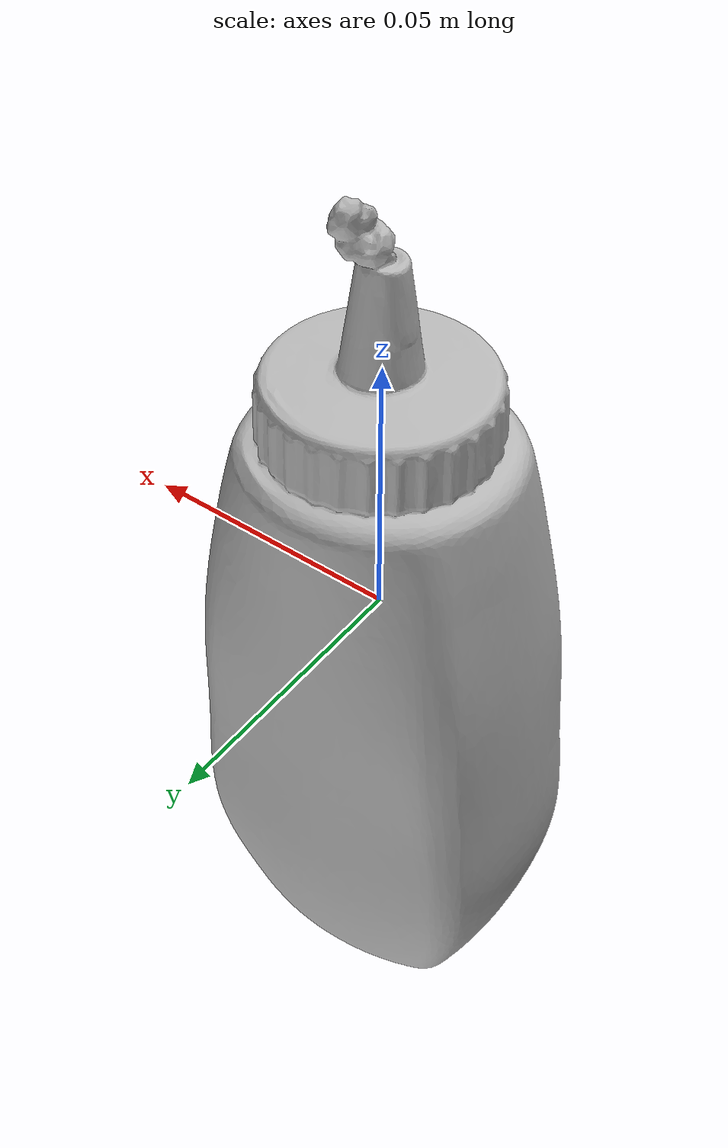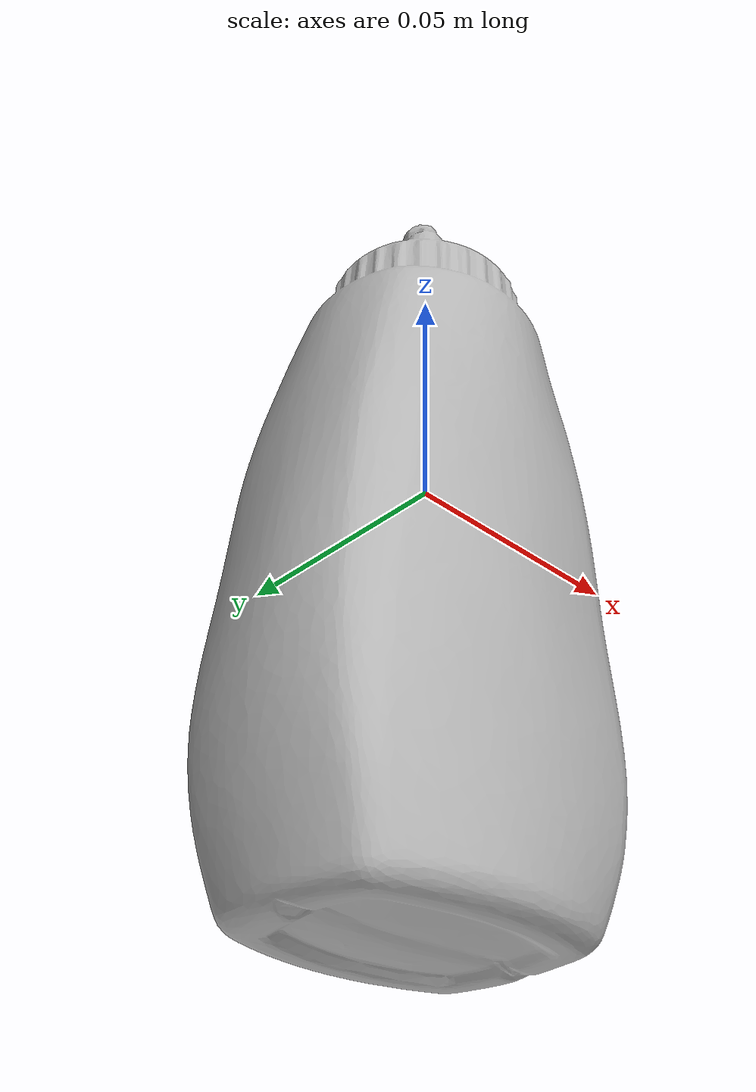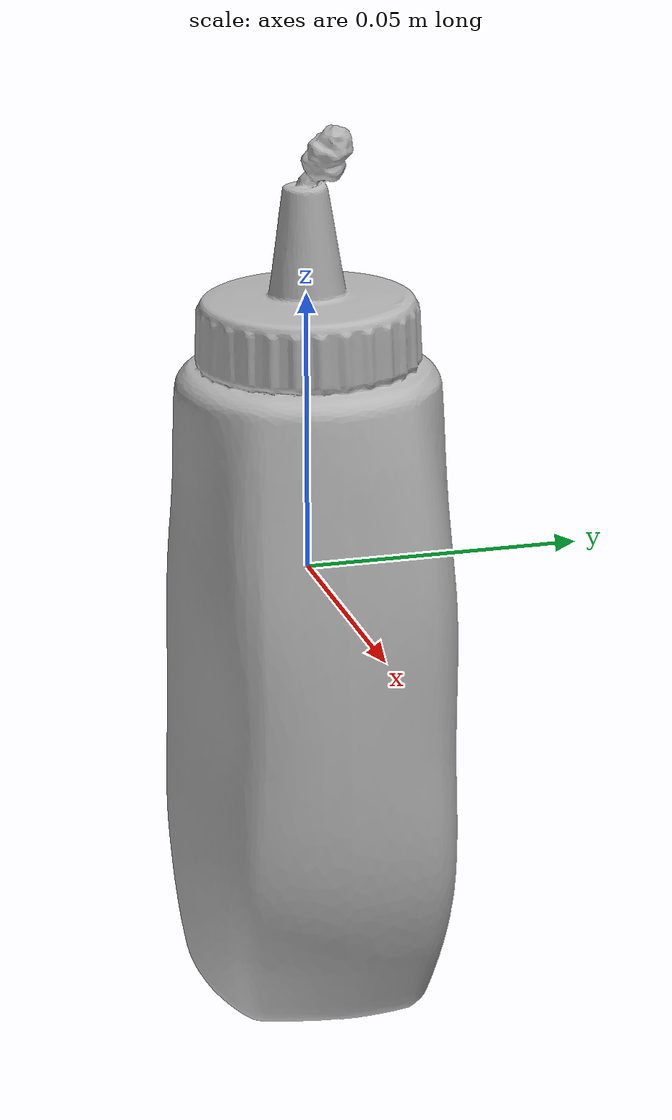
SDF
<?xml version='1.0'?>
<sdf version='1.6'>
  <model name='mustard'>
    <static>true</static>
    <link name="link">
      <visual name="visual">
            <geometry>
                <mesh>
                    <scale>0.05 0.05 0.05</scale>
                    <uri>model://mustard/meshes/mustard.dae</uri>
                </mesh>
            </geometry>
        </visual>
        <collision name="collision">
            <geometry>
                <mesh>
                    <scale>0.05 0.05 0.05</scale>
                    <uri>model://mustard/meshes/mustard.dae</uri>
                </mesh>
            </geometry>
        </collision>
    </link>
  </model>
</sdf>
